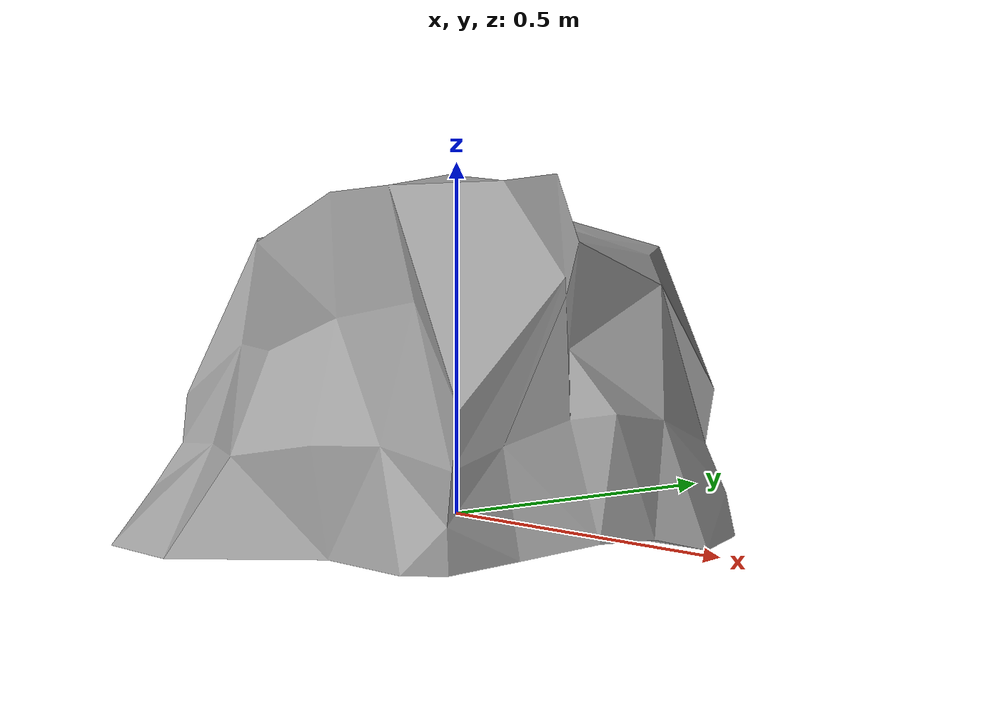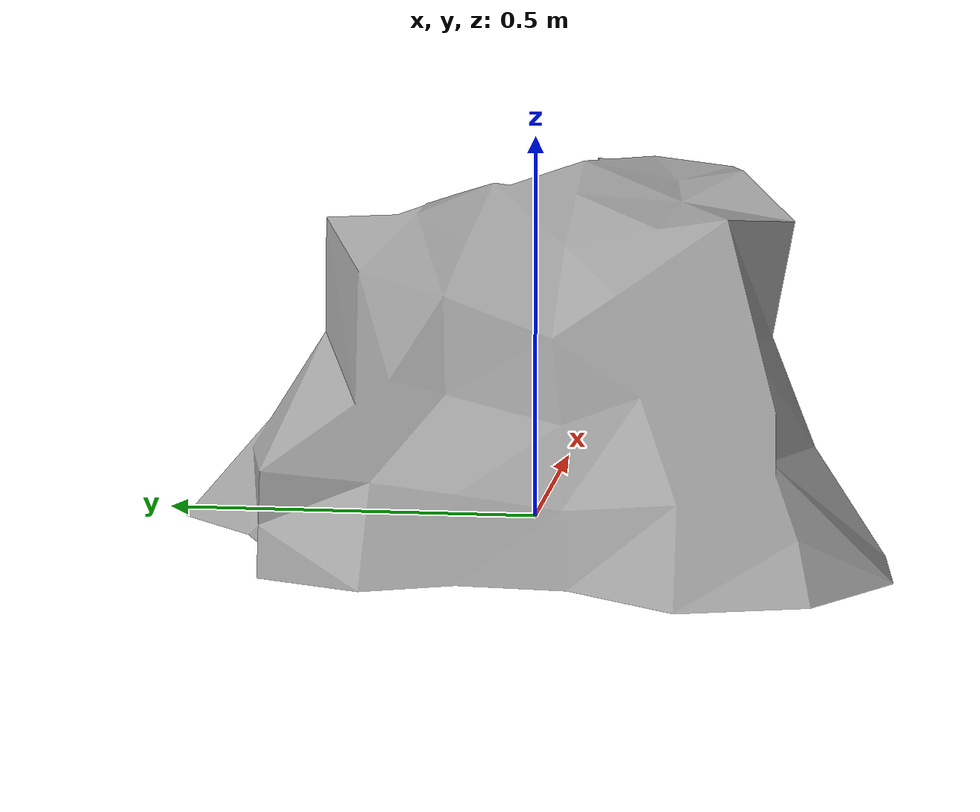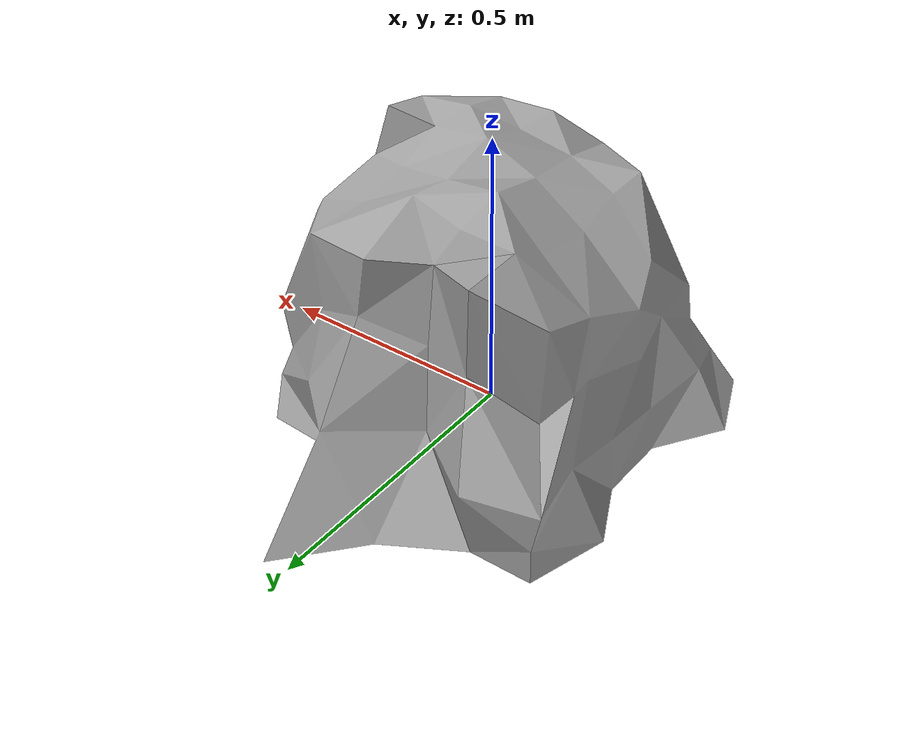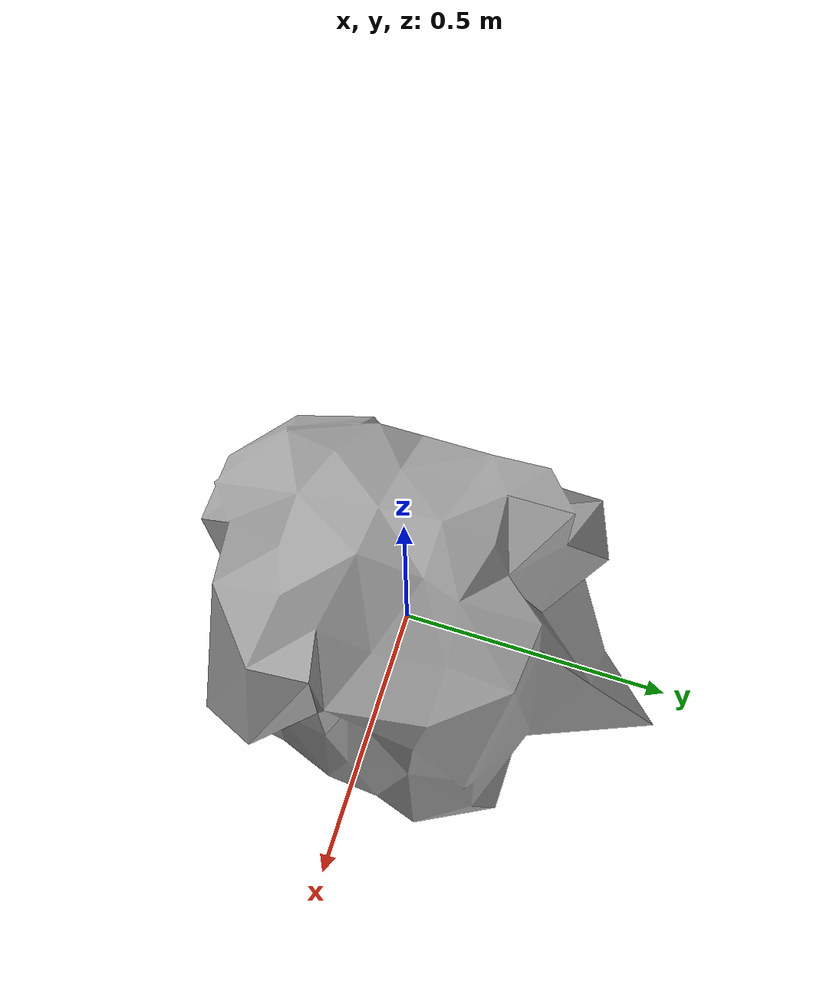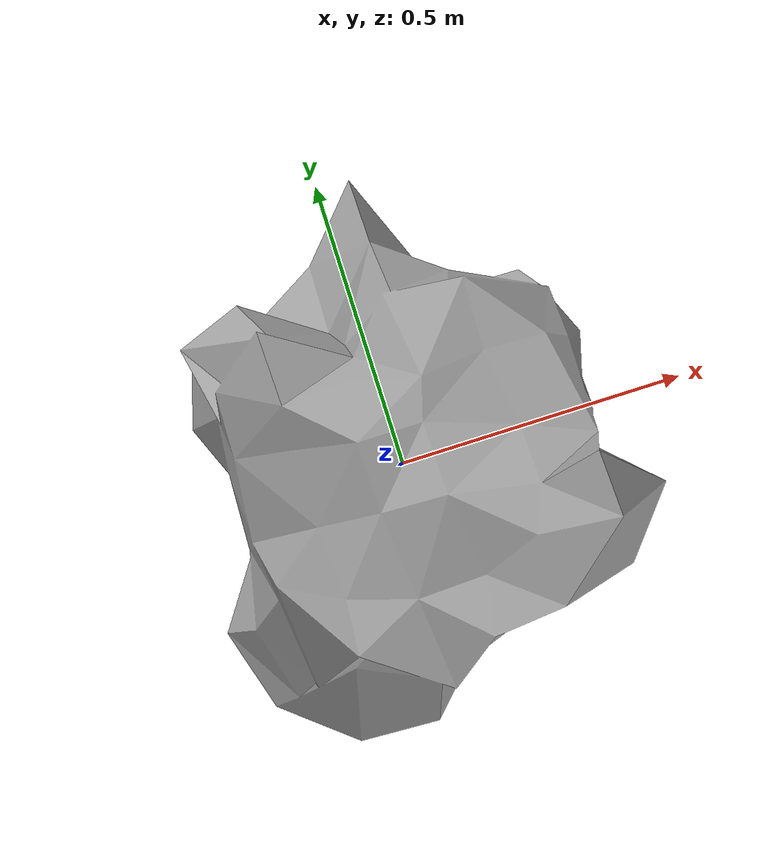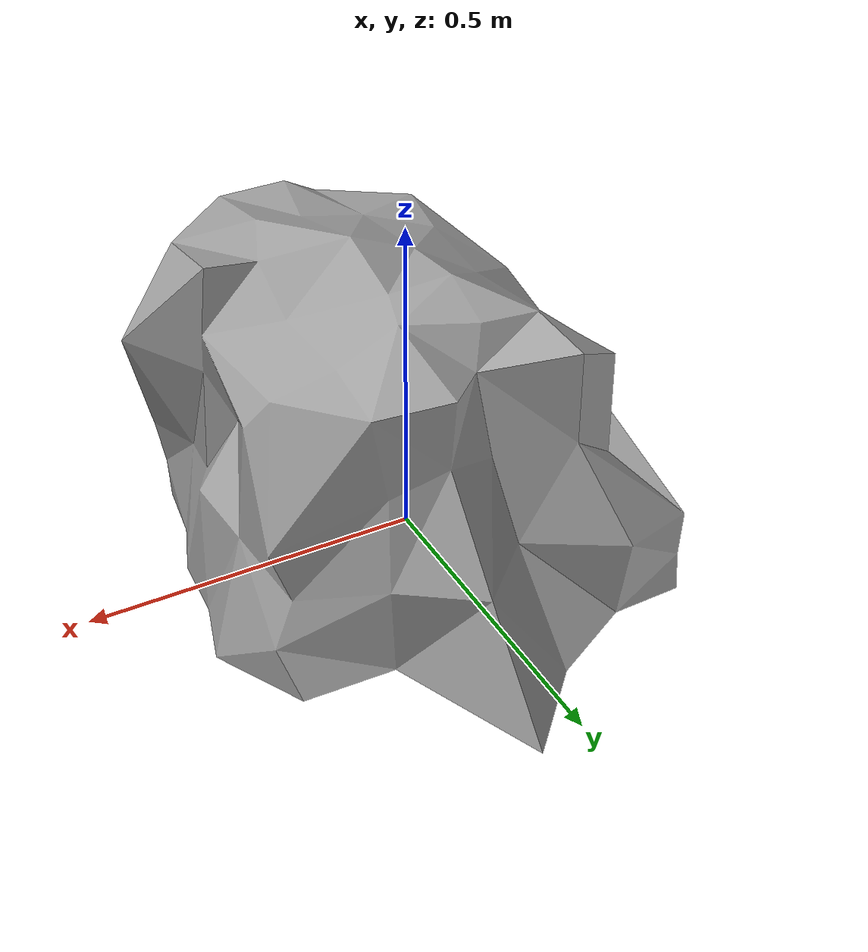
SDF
<?xml version='1.0'?>
<sdf version='1.4'>
  <model name="flat_rock">
  <static>false</static>
          <link name='flatrock'>
            <pose>0 0 -0.05 0 0 0</pose>

            <collision name='rock_collision'>
              <geometry>
                <box>
                  <size>.025 .025 .025</size>
                </box>
              </geometry>
            </collision>

            <visual name='visual'>
              <geometry>
                <mesh>
                  <uri>model://flat_rock/flatrock.dae</uri>
                </mesh>
              </geometry>
            </visual>
          </link>
  </model>
</sdf>
